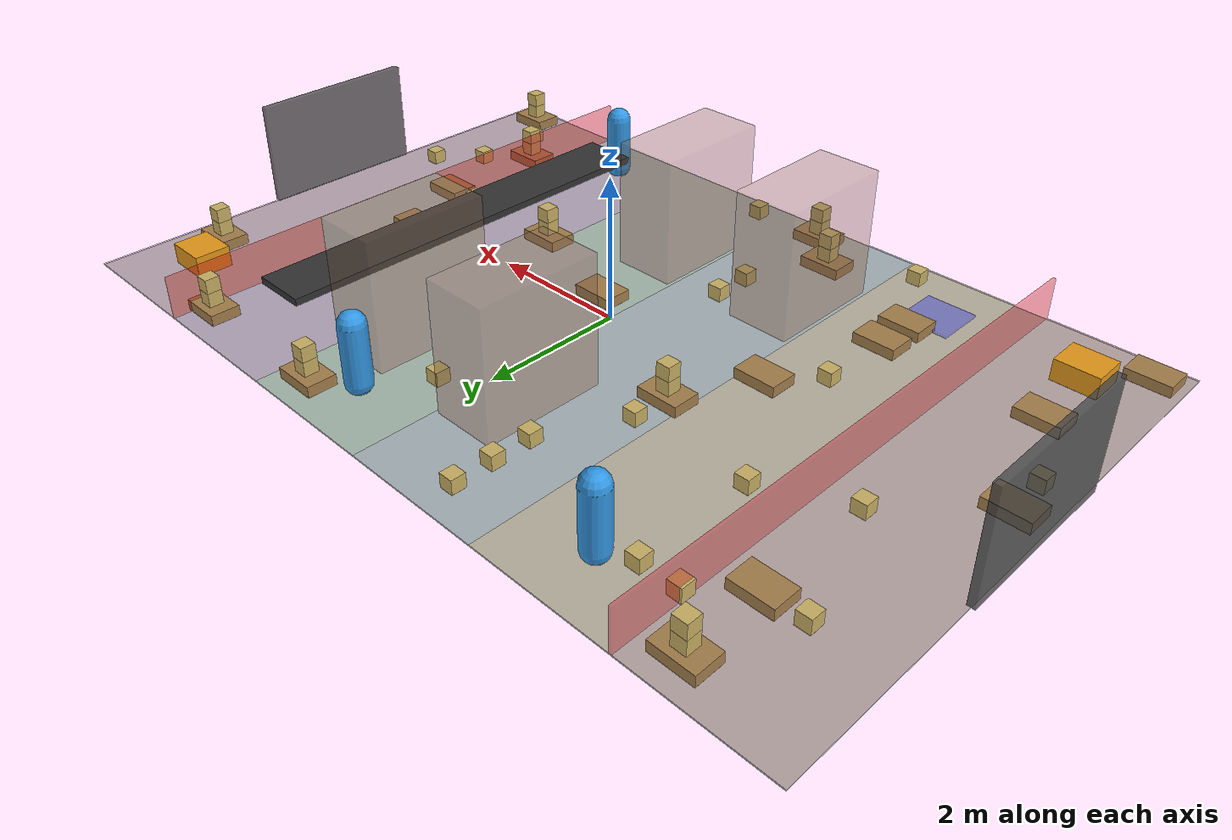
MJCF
<mujoco model="gtwm_warehouse">
  <compiler angle="radian" autolimits="true"/>
  <option timestep="0.005" gravity="0 0 -9.81" integrator="implicitfast"/>
  <visual>
    <headlight ambient="0.4 0.4 0.4" diffuse="0.6 0.6 0.6"/>
  </visual>

  <default>
    <geom friction="0.8 0.02 0.001"/>
  </default>

  <asset>
    <texture type="2d" name="floor_tex" builtin="checker" rgb1="0.75 0.75 0.75"
      rgb2="0.65 0.65 0.65" width="128" height="128"/>
    <material name="floor_mat" texture="floor_tex" texrepeat="12 8" reflectance="0.0"/>
  </asset>

  <worldbody>
    <light name="light_main" pos="0 0 6" dir="0 0 -1" diffuse="0.8 0.8 0.8" directional="true"/>
    <geom name="floor" type="plane" size="6.0 4.0 0.05" material="floor_mat"/>

    <include file="include/zones.xml"/>
    <include file="include/racks.xml"/>
    <include file="include/docks.xml"/>
    <include file="include/conveyor.xml"/>
    <include file="include/agvs.xml"/>
    <include file="include/workers.xml"/>
    <include file="include/objects.xml"/>
    <include file="include/cameras.xml"/>
  </worldbody>

  <actuator>
    <include file="include/agv_actuators.xml"/>
  </actuator>
</mujoco>

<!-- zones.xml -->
<mujocoinclude>
  <site name="zone:Dock_In" type="box" size="1.0 4.0 0.001" pos="-5.0 0 0.001" rgba="0.85 0.55 0.55 0.25" group="1"/>
  <site name="zone:Inspect" type="box" size="1.0 4.0 0.001" pos="-3.0 0 0.001" rgba="0.85 0.75 0.45 0.25" group="1"/>
  <site name="zone:Storage_A" type="box" size="1.0 4.0 0.001" pos="-1.0 0 0.001" rgba="0.55 0.75 0.85 0.25" group="1"/>
  <site name="zone:Storage_B" type="box" size="1.0 4.0 0.001" pos="1.0 0 0.001" rgba="0.55 0.85 0.65 0.25" group="1"/>
  <site name="zone:Pick" type="box" size="1.0 4.0 0.001" pos="3.0 0 0.001" rgba="0.75 0.55 0.85 0.25" group="1"/>
  <site name="zone:Dock_Out" type="box" size="1.0 4.0 0.001" pos="5.0 0 0.001" rgba="0.85 0.55 0.75 0.25" group="1"/>
  <site name="gate:1" type="box" size="0.02 4.0 0.3" pos="-4.0 0 0.3" rgba="0.9 0.1 0.1 0.4" group="2"/>
  <site name="gate:2" type="box" size="0.02 4.0 0.3" pos="4.0 0 0.3" rgba="0.9 0.1 0.1 0.4" group="2"/>
  <site name="scale:1" type="box" size="0.35 0.35 0.02" pos="-3.0 -3.0 0.02" rgba="0.2 0.2 0.9 0.4" group="2"/>
</mujocoinclude>

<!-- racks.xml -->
<mujocoinclude>
  <body name="rack:1" pos="-1.5 -2.0 0">
    <geom type="box" size="0.45 0.85 0.9" pos="0 0 0.9" rgba="0.55 0.4 0.3 0.35" contype="1" conaffinity="1"/>
    <site name="slot:1-0-0" type="sphere" size="0.03" pos="0 -0.6 0.3" rgba="0.9 0.9 0.1 0.6" group="3"/>
    <site name="slot:1-0-1" type="sphere" size="0.03" pos="0 0.0 0.3" rgba="0.9 0.9 0.1 0.6" group="3"/>
    <site name="slot:1-0-2" type="sphere" size="0.03" pos="0 0.6 0.3" rgba="0.9 0.9 0.1 0.6" group="3"/>
    <site name="slot:1-1-0" type="sphere" size="0.03" pos="0 -0.6 0.9" rgba="0.9 0.9 0.1 0.6" group="3"/>
    <site name="slot:1-1-1" type="sphere" size="0.03" pos="0 0.0 0.9" rgba="0.9 0.9 0.1 0.6" group="3"/>
    <site name="slot:1-1-2" type="sphere" size="0.03" pos="0 0.6 0.9" rgba="0.9 0.9 0.1 0.6" group="3"/>
    <site name="slot:1-2-0" type="sphere" size="0.03" pos="0 -0.6 1.5" rgba="0.9 0.9 0.1 0.6" group="3"/>
    <site name="slot:1-2-1" type="sphere" size="0.03" pos="0 0.0 1.5" rgba="0.9 0.9 0.1 0.6" group="3"/>
    <site name="slot:1-2-2" type="sphere" size="0.03" pos="0 0.6 1.5" rgba="0.9 0.9 0.1 0.6" group="3"/>
  </body>
  <body name="rack:2" pos="-0.5 2.0 0">
    <geom type="box" size="0.45 0.85 0.9" pos="0 0 0.9" rgba="0.55 0.4 0.3 0.35" contype="1" conaffinity="1"/>
    <site name="slot:2-0-0" type="sphere" size="0.03" pos="0 -0.6 0.3" rgba="0.9 0.9 0.1 0.6" group="3"/>
    <site name="slot:2-0-1" type="sphere" size="0.03" pos="0 0.0 0.3" rgba="0.9 0.9 0.1 0.6" group="3"/>
    <site name="slot:2-0-2" type="sphere" size="0.03" pos="0 0.6 0.3" rgba="0.9 0.9 0.1 0.6" group="3"/>
    <site name="slot:2-1-0" type="sphere" size="0.03" pos="0 -0.6 0.9" rgba="0.9 0.9 0.1 0.6" group="3"/>
    <site name="slot:2-1-1" type="sphere" size="0.03" pos="0 0.0 0.9" rgba="0.9 0.9 0.1 0.6" group="3"/>
    <site name="slot:2-1-2" type="sphere" size="0.03" pos="0 0.6 0.9" rgba="0.9 0.9 0.1 0.6" group="3"/>
    <site name="slot:2-2-0" type="sphere" size="0.03" pos="0 -0.6 1.5" rgba="0.9 0.9 0.1 0.6" group="3"/>
    <site name="slot:2-2-1" type="sphere" size="0.03" pos="0 0.0 1.5" rgba="0.9 0.9 0.1 0.6" group="3"/>
    <site name="slot:2-2-2" type="sphere" size="0.03" pos="0 0.6 1.5" rgba="0.9 0.9 0.1 0.6" group="3"/>
  </body>
  <body name="rack:3" pos="0.5 -2.0 0">
    <geom type="box" size="0.45 0.85 0.9" pos="0 0 0.9" rgba="0.55 0.4 0.3 0.35" contype="1" conaffinity="1"/>
    <site name="slot:3-0-0" type="sphere" size="0.03" pos="0 -0.6 0.3" rgba="0.9 0.9 0.1 0.6" group="3"/>
    <site name="slot:3-0-1" type="sphere" size="0.03" pos="0 0.0 0.3" rgba="0.9 0.9 0.1 0.6" group="3"/>
    <site name="slot:3-0-2" type="sphere" size="0.03" pos="0 0.6 0.3" rgba="0.9 0.9 0.1 0.6" group="3"/>
    <site name="slot:3-1-0" type="sphere" size="0.03" pos="0 -0.6 0.9" rgba="0.9 0.9 0.1 0.6" group="3"/>
    <site name="slot:3-1-1" type="sphere" size="0.03" pos="0 0.0 0.9" rgba="0.9 0.9 0.1 0.6" group="3"/>
    <site name="slot:3-1-2" type="sphere" size="0.03" pos="0 0.6 0.9" rgba="0.9 0.9 0.1 0.6" group="3"/>
    <site name="slot:3-2-0" type="sphere" size="0.03" pos="0 -0.6 1.5" rgba="0.9 0.9 0.1 0.6" group="3"/>
    <site name="slot:3-2-1" type="sphere" size="0.03" pos="0 0.0 1.5" rgba="0.9 0.9 0.1 0.6" group="3"/>
    <site name="slot:3-2-2" type="sphere" size="0.03" pos="0 0.6 1.5" rgba="0.9 0.9 0.1 0.6" group="3"/>
  </body>
  <body name="rack:4" pos="1.5 2.0 0">
    <geom type="box" size="0.45 0.85 0.9" pos="0 0 0.9" rgba="0.55 0.4 0.3 0.35" contype="1" conaffinity="1"/>
    <site name="slot:4-0-0" type="sphere" size="0.03" pos="0 -0.6 0.3" rgba="0.9 0.9 0.1 0.6" group="3"/>
    <site name="slot:4-0-1" type="sphere" size="0.03" pos="0 0.0 0.3" rgba="0.9 0.9 0.1 0.6" group="3"/>
    <site name="slot:4-0-2" type="sphere" size="0.03" pos="0 0.6 0.3" rgba="0.9 0.9 0.1 0.6" group="3"/>
    <site name="slot:4-1-0" type="sphere" size="0.03" pos="0 -0.6 0.9" rgba="0.9 0.9 0.1 0.6" group="3"/>
    <site name="slot:4-1-1" type="sphere" size="0.03" pos="0 0.0 0.9" rgba="0.9 0.9 0.1 0.6" group="3"/>
    <site name="slot:4-1-2" type="sphere" size="0.03" pos="0 0.6 0.9" rgba="0.9 0.9 0.1 0.6" group="3"/>
    <site name="slot:4-2-0" type="sphere" size="0.03" pos="0 -0.6 1.5" rgba="0.9 0.9 0.1 0.6" group="3"/>
    <site name="slot:4-2-1" type="sphere" size="0.03" pos="0 0.0 1.5" rgba="0.9 0.9 0.1 0.6" group="3"/>
    <site name="slot:4-2-2" type="sphere" size="0.03" pos="0 0.6 1.5" rgba="0.9 0.9 0.1 0.6" group="3"/>
  </body>
</mujocoinclude>

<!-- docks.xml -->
<mujocoinclude>
  <body name="dock:1" pos="-6.0 0 0.75">
    <geom type="box" size="0.05 1.2 0.75" rgba="0.3 0.3 0.3 0.8"/>
    <site name="dock:1" type="box" size="0.4 1.2 0.75" pos="0 0 0" rgba="0.3 0.3 0.3 0.0" group="2"/>
  </body>
  <body name="dock:2" pos="6.0 0 0.75">
    <geom type="box" size="0.05 1.2 0.75" rgba="0.3 0.3 0.3 0.8"/>
    <site name="dock:2" type="box" size="0.4 1.2 0.75" pos="0 0 0" rgba="0.3 0.3 0.3 0.0" group="2"/>
  </body>
</mujocoinclude>

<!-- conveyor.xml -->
<mujocoinclude>
  <body name="equipment:conveyor_1" pos="3.0 0 0.4">
    <geom type="box" size="0.4 3.0 0.05" rgba="0.2 0.2 0.2 1"/>
    <site name="equipment:conveyor_1" type="box" size="0.4 3.0 0.05" pos="0 0 0.06" rgba="0.2 0.2 0.2 0.0" group="2"/>
  </body>
</mujocoinclude>

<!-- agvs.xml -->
<mujocoinclude>
  <body name="agv:1" pos="-5.0 -3.0 0.15">
    <joint name="agv:1_x" type="slide" axis="1 0 0" damping="5"/>
    <joint name="agv:1_y" type="slide" axis="0 1 0" damping="5"/>
    <joint name="agv:1_yaw" type="hinge" axis="0 0 1" damping="2"/>
    <geom name="agv:1" type="box" size="0.3 0.25 0.15" rgba="0.9 0.6 0.1 1" mass="60"/>
  </body>
  <body name="agv:2" pos="5.0 3.0 0.15">
    <joint name="agv:2_x" type="slide" axis="1 0 0" damping="5"/>
    <joint name="agv:2_y" type="slide" axis="0 1 0" damping="5"/>
    <joint name="agv:2_yaw" type="hinge" axis="0 0 1" damping="2"/>
    <geom name="agv:2" type="box" size="0.3 0.25 0.15" rgba="0.9 0.6 0.1 1" mass="60"/>
  </body>
</mujocoinclude>

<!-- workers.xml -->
<mujocoinclude>
  <body name="worker:1" mocap="true" pos="-3.0 3.2 0.5">
    <geom type="capsule" fromto="0 0 -0.4 0 0 0.4" size="0.18" rgba="0.2 0.6 0.9 1" contype="0" conaffinity="0"/>
  </body>
  <body name="worker:2" mocap="true" pos="1.0 3.2 0.5">
    <geom type="capsule" fromto="0 0 -0.4 0 0 0.4" size="0.18" rgba="0.2 0.6 0.9 1" contype="0" conaffinity="0"/>
  </body>
  <body name="worker:3" mocap="true" pos="3.0 -3.2 0.5">
    <geom type="capsule" fromto="0 0 -0.4 0 0 0.4" size="0.18" rgba="0.2 0.6 0.9 1" contype="0" conaffinity="0"/>
  </body>
</mujocoinclude>

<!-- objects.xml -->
<mujocoinclude>
  <body name="pallet:1" pos="-1.75 0.8 0.075">
    <freejoint/>
    <geom name="pallet:1" type="box" size="0.3 0.2 0.075" rgba="0.65 0.5 0.3 1" mass="15"/>
  </body>
  <body name="case:1" pos="-1.75 0.8 0.25">
    <freejoint/>
    <geom name="case:1" type="box" size="0.1 0.1 0.1" rgba="0.8 0.7 0.4 1" mass="3"/>
  </body>
  <body name="case:2" pos="-1.75 0.8 0.45">
    <freejoint/>
    <geom name="case:2" type="box" size="0.1 0.1 0.1" rgba="0.8 0.7 0.4 1" mass="3"/>
  </body>
  <body name="pallet:2" pos="1.55 3.55 0.075">
    <freejoint/>
    <geom name="pallet:2" type="box" size="0.3 0.2 0.075" rgba="0.65 0.5 0.3 1" mass="15"/>
  </body>
  <body name="case:3" pos="1.55 3.55 0.25">
    <freejoint/>
    <geom name="case:3" type="box" size="0.1 0.1 0.1" rgba="0.8 0.7 0.4 1" mass="3"/>
  </body>
  <body name="case:4" pos="1.55 3.55 0.45">
    <freejoint/>
    <geom name="case:4" type="box" size="0.1 0.1 0.1" rgba="0.8 0.7 0.4 1" mass="3"/>
  </body>
  <body name="pallet:3" pos="2.1 -0.85 0.075">
    <freejoint/>
    <geom name="pallet:3" type="box" size="0.3 0.2 0.075" rgba="0.65 0.5 0.3 1" mass="15"/>
  </body>
  <body name="case:5" pos="2.1 -0.85 0.25">
    <freejoint/>
    <geom name="case:5" type="box" size="0.1 0.1 0.1" rgba="0.8 0.7 0.4 1" mass="3"/>
  </body>
  <body name="case:6" pos="2.1 -0.85 0.45">
    <freejoint/>
    <geom name="case:6" type="box" size="0.1 0.1 0.1" rgba="0.8 0.7 0.4 1" mass="3"/>
  </body>
  <body name="pallet:4" pos="5.4 2.45 0.075">
    <freejoint/>
    <geom name="pallet:4" type="box" size="0.3 0.2 0.075" rgba="0.65 0.5 0.3 1" mass="15"/>
  </body>
  <body name="case:7" pos="5.4 2.45 0.25">
    <freejoint/>
    <geom name="case:7" type="box" size="0.1 0.1 0.1" rgba="0.8 0.7 0.4 1" mass="3"/>
  </body>
  <body name="case:8" pos="5.4 2.45 0.45">
    <freejoint/>
    <geom name="case:8" type="box" size="0.1 0.1 0.1" rgba="0.8 0.7 0.4 1" mass="3"/>
  </body>
  <body name="pallet:5" pos="-0.65 -3.6 0.075">
    <freejoint/>
    <geom name="pallet:5" type="box" size="0.3 0.2 0.075" rgba="0.65 0.5 0.3 1" mass="15"/>
  </body>
  <body name="case:9" pos="-0.65 -3.6 0.25">
    <freejoint/>
    <geom name="case:9" type="box" size="0.1 0.1 0.1" rgba="0.8 0.7 0.4 1" mass="3"/>
  </body>
  <body name="case:10" pos="-0.65 -3.6 0.45">
    <freejoint/>
    <geom name="case:10" type="box" size="0.1 0.1 0.1" rgba="0.8 0.7 0.4 1" mass="3"/>
  </body>
  <body name="pallet:6" pos="-1.2 -3.05 0.075">
    <freejoint/>
    <geom name="pallet:6" type="box" size="0.3 0.2 0.075" rgba="0.65 0.5 0.3 1" mass="15"/>
  </body>
  <body name="case:11" pos="-1.2 -3.05 0.25">
    <freejoint/>
    <geom name="case:11" type="box" size="0.1 0.1 0.1" rgba="0.8 0.7 0.4 1" mass="3"/>
  </body>
  <body name="case:12" pos="-1.2 -3.05 0.45">
    <freejoint/>
    <geom name="case:12" type="box" size="0.1 0.1 0.1" rgba="0.8 0.7 0.4 1" mass="3"/>
  </body>
  <body name="pallet:7" pos="4.3 -2.5 0.075">
    <freejoint/>
    <geom name="pallet:7" type="box" size="0.3 0.2 0.075" rgba="0.65 0.5 0.3 1" mass="15"/>
  </body>
  <body name="case:13" pos="4.3 -2.5 0.25">
    <freejoint/>
    <geom name="case:13" type="box" size="0.1 0.1 0.1" rgba="0.8 0.7 0.4 1" mass="3"/>
  </body>
  <body name="case:14" pos="4.3 -2.5 0.45">
    <freejoint/>
    <geom name="case:14" type="box" size="0.1 0.1 0.1" rgba="0.8 0.7 0.4 1" mass="3"/>
  </body>
  <body name="pallet:8" pos="3.75 3.55 0.075">
    <freejoint/>
    <geom name="pallet:8" type="box" size="0.3 0.2 0.075" rgba="0.65 0.5 0.3 1" mass="15"/>
  </body>
  <body name="case:15" pos="3.75 3.55 0.25">
    <freejoint/>
    <geom name="case:15" type="box" size="0.1 0.1 0.1" rgba="0.8 0.7 0.4 1" mass="3"/>
  </body>
  <body name="case:16" pos="3.75 3.55 0.45">
    <freejoint/>
    <geom name="case:16" type="box" size="0.1 0.1 0.1" rgba="0.8 0.7 0.4 1" mass="3"/>
  </body>
  <body name="pallet:9" pos="-4.5 3.55 0.075">
    <freejoint/>
    <geom name="pallet:9" type="box" size="0.3 0.2 0.075" rgba="0.65 0.5 0.3 1" mass="15"/>
  </body>
  <body name="case:17" pos="-4.5 3.55 0.25">
    <freejoint/>
    <geom name="case:17" type="box" size="0.1 0.1 0.1" rgba="0.8 0.7 0.4 1" mass="3"/>
  </body>
  <body name="case:18" pos="-4.5 3.55 0.45">
    <freejoint/>
    <geom name="case:18" type="box" size="0.1 0.1 0.1" rgba="0.8 0.7 0.4 1" mass="3"/>
  </body>
  <body name="pallet:10" pos="5.4 -3.6 0.075">
    <freejoint/>
    <geom name="pallet:10" type="box" size="0.3 0.2 0.075" rgba="0.65 0.5 0.3 1" mass="15"/>
  </body>
  <body name="case:19" pos="5.4 -3.6 0.25">
    <freejoint/>
    <geom name="case:19" type="box" size="0.1 0.1 0.1" rgba="0.8 0.7 0.4 1" mass="3"/>
  </body>
  <body name="case:20" pos="5.4 -3.6 0.45">
    <freejoint/>
    <geom name="case:20" type="box" size="0.1 0.1 0.1" rgba="0.8 0.7 0.4 1" mass="3"/>
  </body>
  <body name="pallet:11" pos="-5.6 -3.6 0.075">
    <freejoint/>
    <geom name="pallet:11" type="box" size="0.3 0.2 0.075" rgba="0.65 0.5 0.3 1" mass="15"/>
  </body>
  <body name="pallet:12" pos="-2.85 -1.95 0.075">
    <freejoint/>
    <geom name="pallet:12" type="box" size="0.3 0.2 0.075" rgba="0.65 0.5 0.3 1" mass="15"/>
  </body>
  <body name="pallet:13" pos="-2.85 -2.5 0.075">
    <freejoint/>
    <geom name="pallet:13" type="box" size="0.3 0.2 0.075" rgba="0.65 0.5 0.3 1" mass="15"/>
  </body>
  <body name="pallet:14" pos="-2.3 -0.3 0.075">
    <freejoint/>
    <geom name="pallet:14" type="box" size="0.3 0.2 0.075" rgba="0.65 0.5 0.3 1" mass="15"/>
  </body>
  <body name="pallet:15" pos="-4.5 2.45 0.075">
    <freejoint/>
    <geom name="pallet:15" type="box" size="0.3 0.2 0.075" rgba="0.65 0.5 0.3 1" mass="15"/>
  </body>
  <body name="pallet:16" pos="3.75 0.25 0.075">
    <freejoint/>
    <geom name="pallet:16" type="box" size="0.3 0.2 0.075" rgba="0.65 0.5 0.3 1" mass="15"/>
  </body>
  <body name="pallet:17" pos="0.45 -0.3 0.075">
    <freejoint/>
    <geom name="pallet:17" type="box" size="0.3 0.2 0.075" rgba="0.65 0.5 0.3 1" mass="15"/>
  </body>
  <body name="pallet:18" pos="-5.6 -0.3 0.075">
    <freejoint/>
    <geom name="pallet:18" type="box" size="0.3 0.2 0.075" rgba="0.65 0.5 0.3 1" mass="15"/>
  </body>
  <body name="pallet:19" pos="4.3 -0.85 0.075">
    <freejoint/>
    <geom name="pallet:19" type="box" size="0.3 0.2 0.075" rgba="0.65 0.5 0.3 1" mass="15"/>
  </body>
  <body name="pallet:20" pos="-5.05 -1.95 0.075">
    <freejoint/>
    <geom name="pallet:20" type="box" size="0.3 0.2 0.075" rgba="0.65 0.5 0.3 1" mass="15"/>
  </body>
  <body name="case:21" pos="4.85 -3.05 0.1">
    <freejoint/>
    <geom name="case:21" type="box" size="0.1 0.1 0.1" rgba="0.8 0.7 0.4 1" mass="3"/>
  </body>
  <body name="case:22" pos="0.45 -3.6 0.1">
    <freejoint/>
    <geom name="case:22" type="box" size="0.1 0.1 0.1" rgba="0.8 0.7 0.4 1" mass="3"/>
  </body>
  <body name="case:23" pos="-1.2 2.45 0.1">
    <freejoint/>
    <geom name="case:23" type="box" size="0.1 0.1 0.1" rgba="0.8 0.7 0.4 1" mass="3"/>
  </body>
  <body name="case:24" pos="-1.2 3.0 0.1">
    <freejoint/>
    <geom name="case:24" type="box" size="0.1 0.1 0.1" rgba="0.8 0.7 0.4 1" mass="3"/>
  </body>
  <body name="case:25" pos="-2.3 -3.6 0.1">
    <freejoint/>
    <geom name="case:25" type="box" size="0.1 0.1 0.1" rgba="0.8 0.7 0.4 1" mass="3"/>
  </body>
  <body name="case:26" pos="5.4 -1.4 0.1">
    <freejoint/>
    <geom name="case:26" type="box" size="0.1 0.1 0.1" rgba="0.8 0.7 0.4 1" mass="3"/>
  </body>
  <body name="case:27" pos="3.75 -0.85 0.1">
    <freejoint/>
    <geom name="case:27" type="box" size="0.1 0.1 0.1" rgba="0.8 0.7 0.4 1" mass="3"/>
  </body>
  <body name="case:28" pos="-0.65 -1.4 0.1">
    <freejoint/>
    <geom name="case:28" type="box" size="0.1 0.1 0.1" rgba="0.8 0.7 0.4 1" mass="3"/>
  </body>
  <body name="case:29" pos="-5.05 2.45 0.1">
    <freejoint/>
    <geom name="case:29" type="box" size="0.1 0.1 0.1" rgba="0.8 0.7 0.4 1" mass="3"/>
  </body>
  <body name="case:30" pos="-1.75 1.35 0.1">
    <freejoint/>
    <geom name="case:30" type="box" size="0.1 0.1 0.1" rgba="0.8 0.7 0.4 1" mass="3"/>
  </body>
  <body name="case:31" pos="-3.95 3.0 0.1">
    <freejoint/>
    <geom name="case:31" type="box" size="0.1 0.1 0.1" rgba="0.8 0.7 0.4 1" mass="3"/>
  </body>
  <body name="case:32" pos="-4.5 0.8 0.1">
    <freejoint/>
    <geom name="case:32" type="box" size="0.1 0.1 0.1" rgba="0.8 0.7 0.4 1" mass="3"/>
  </body>
  <body name="case:33" pos="-3.4 3.0 0.1">
    <freejoint/>
    <geom name="case:33" type="box" size="0.1 0.1 0.1" rgba="0.8 0.7 0.4 1" mass="3"/>
  </body>
  <body name="case:34" pos="-2.85 -0.85 0.1">
    <freejoint/>
    <geom name="case:34" type="box" size="0.1 0.1 0.1" rgba="0.8 0.7 0.4 1" mass="3"/>
  </body>
  <body name="case:35" pos="-0.65 -1.95 0.1">
    <freejoint/>
    <geom name="case:35" type="box" size="0.1 0.1 0.1" rgba="0.8 0.7 0.4 1" mass="3"/>
  </body>
  <body name="case:36" pos="-1.2 3.55 0.1">
    <freejoint/>
    <geom name="case:36" type="box" size="0.1 0.1 0.1" rgba="0.8 0.7 0.4 1" mass="3"/>
  </body>
  <body name="case:37" pos="-5.6 -0.85 0.1">
    <freejoint/>
    <geom name="case:37" type="box" size="0.1 0.1 0.1" rgba="0.8 0.7 0.4 1" mass="3"/>
  </body>
  <body name="case:38" pos="-3.4 1.35 0.1">
    <freejoint/>
    <geom name="case:38" type="box" size="0.1 0.1 0.1" rgba="0.8 0.7 0.4 1" mass="3"/>
  </body>
  <body name="case:39" pos="4.85 -1.95 0.1">
    <freejoint/>
    <geom name="case:39" type="box" size="0.1 0.1 0.1" rgba="0.8 0.7 0.4 1" mass="3"/>
  </body>
  <body name="case:40" pos="0.45 2.45 0.1">
    <freejoint/>
    <geom name="case:40" type="box" size="0.1 0.1 0.1" rgba="0.8 0.7 0.4 1" mass="3"/>
  </body>
</mujocoinclude>

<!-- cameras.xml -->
<mujocoinclude>
  <camera name="cam:1" pos="-5.7 -3.7 4.5" quat="0.767538 0.427926 -0.232400 -0.416839" fovy="55"/>
  <camera name="cam:2" pos="5.7 -3.7 4.5" quat="0.767538 0.427926 0.232400 0.416839" fovy="55"/>
  <camera name="cam:3" pos="-5.7 3.7 4.5" quat="-0.416839 -0.232400 0.427926 0.767538" fovy="55"/>
  <camera name="cam:4" pos="5.7 3.7 4.5" quat="0.416839 0.232400 0.427926 0.767538" fovy="55"/>
</mujocoinclude>

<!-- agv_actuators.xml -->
<mujocoinclude>
  <velocity name="agv:1_x_act" joint="agv:1_x" kv="200"/>
  <velocity name="agv:1_y_act" joint="agv:1_y" kv="200"/>
  <velocity name="agv:1_yaw_act" joint="agv:1_yaw" kv="50"/>
  <velocity name="agv:2_x_act" joint="agv:2_x" kv="200"/>
  <velocity name="agv:2_y_act" joint="agv:2_y" kv="200"/>
  <velocity name="agv:2_yaw_act" joint="agv:2_yaw" kv="50"/>
</mujocoinclude>
